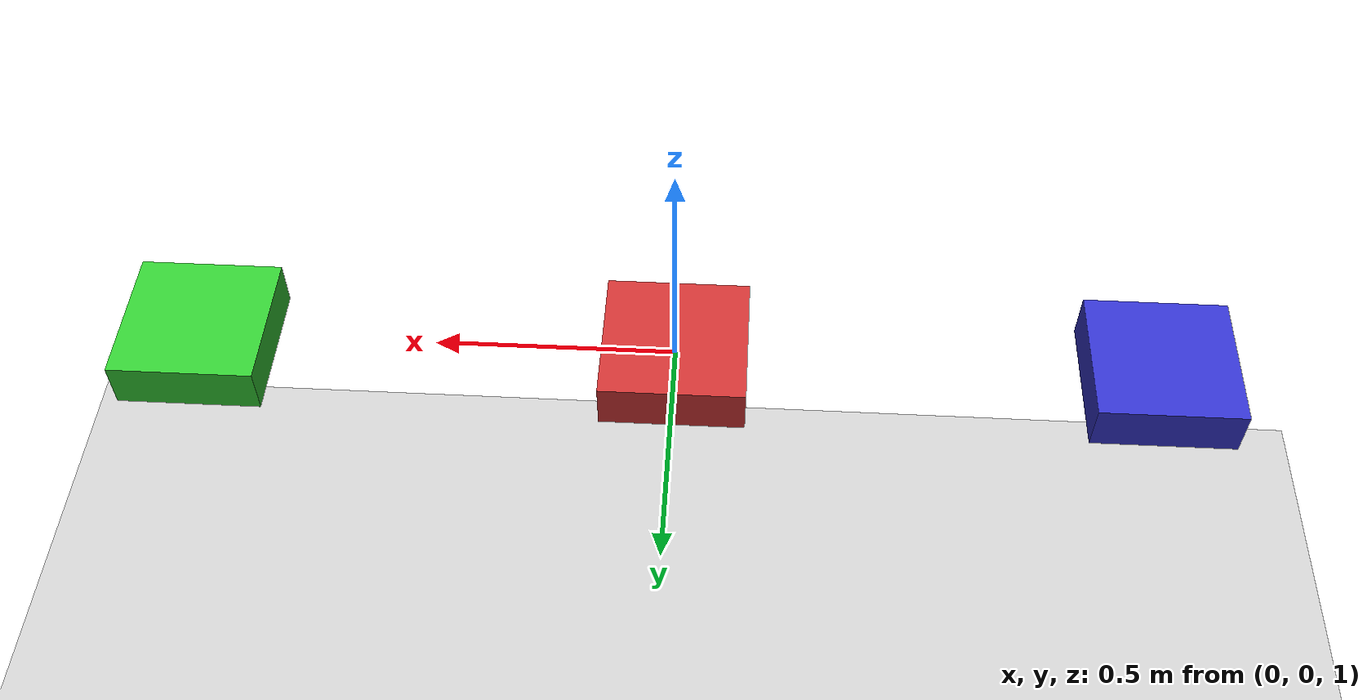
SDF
<?xml version="1.0" ?>
<sdf version="1.6">
  <world name="simple_drones_world">
    <!-- A global light source -->
    <include>
      <uri>model://sun</uri>
    </include>

    <!-- A ground plane -->
    <include>
      <uri>model://ground_plane</uri>
    </include>

    <!-- Drone 1 - Red Leader -->
    <model name="drone1">
      <static>false</static>
      <pose>0 0 1 0 0 0</pose>
      <link name="base_link">
        <visual name="body_visual">
          <geometry>
            <box>
              <size>0.3 0.3 0.1</size>
            </box>
          </geometry>
          <material>
            <ambient>0.8 0.2 0.2 1</ambient>
            <diffuse>0.8 0.2 0.2 1</diffuse>
            <specular>0.2 0.2 0.2 1</specular>
          </material>
        </visual>

        <collision name="body_collision">
          <geometry>
            <box>
              <size>0.3 0.3 0.1</size>
            </box>
          </geometry>
        </collision>

        <inertial>
          <mass>1.0</mass>
          <inertia>
            <ixx>0.01</ixx>
            <ixy>0</ixy>
            <ixz>0</ixz>
            <iyy>0.01</iyy>
            <iyz>0</iyz>
            <izz>0.02</izz>
          </inertia>
        </inertial>
      </link>
    </model>

    <!-- Drone 2 - Blue Left Wing -->
    <model name="drone2">
      <static>false</static>
      <pose>-1 0 1 0 0 0</pose>
      <link name="base_link">
        <visual name="body_visual">
          <geometry>
            <box>
              <size>0.3 0.3 0.1</size>
            </box>
          </geometry>
          <material>
            <ambient>0.2 0.2 0.8 1</ambient>
            <diffuse>0.2 0.2 0.8 1</diffuse>
            <specular>0.2 0.2 0.2 1</specular>
          </material>
        </visual>

        <collision name="body_collision">
          <geometry>
            <box>
              <size>0.3 0.3 0.1</size>
            </box>
          </geometry>
        </collision>

        <inertial>
          <mass>1.0</mass>
          <inertia>
            <ixx>0.01</ixx>
            <ixy>0</ixy>
            <ixz>0</ixz>
            <iyy>0.01</iyy>
            <iyz>0</iyz>
            <izz>0.02</izz>
          </inertia>
        </inertial>
      </link>
    </model>

    <!-- Drone 3 - Green Right Wing -->
    <model name="drone3">
      <static>false</static>
      <pose>1 0 1 0 0 0</pose>
      <link name="base_link">
        <visual name="body_visual">
          <geometry>
            <box>
              <size>0.3 0.3 0.1</size>
            </box>
          </geometry>
          <material>
            <ambient>0.2 0.8 0.2 1</ambient>
            <diffuse>0.2 0.8 0.2 1</diffuse>
            <specular>0.2 0.2 0.2 1</specular>
          </material>
        </visual>

        <collision name="body_collision">
          <geometry>
            <box>
              <size>0.3 0.3 0.1</size>
            </box>
          </geometry>
        </collision>

        <inertial>
          <mass>1.0</mass>
          <inertia>
            <ixx>0.01</ixx>
            <ixy>0</ixy>
            <ixz>0</ixz>
            <iyy>0.01</iyy>
            <iyz>0</iyz>
            <izz>0.02</izz>
          </inertia>
        </inertial>
      </link>
    </model>

    <!-- Physics settings -->
    <physics type="ode">
      <max_step_size>0.001</max_step_size>
      <real_time_factor>1</real_time_factor>
      <real_time_update_rate>1000</real_time_update_rate>
      <gravity>0 0 -9.81</gravity>
    </physics>

    <!-- GUI settings -->
    <gui fullscreen='0'>
      <camera name='user_camera'>
        <pose>5 -5 3 0 0.785 0.785</pose>
        <view_controller>orbit</view_controller>
      </camera>
    </gui>
  </world>
</sdf>
